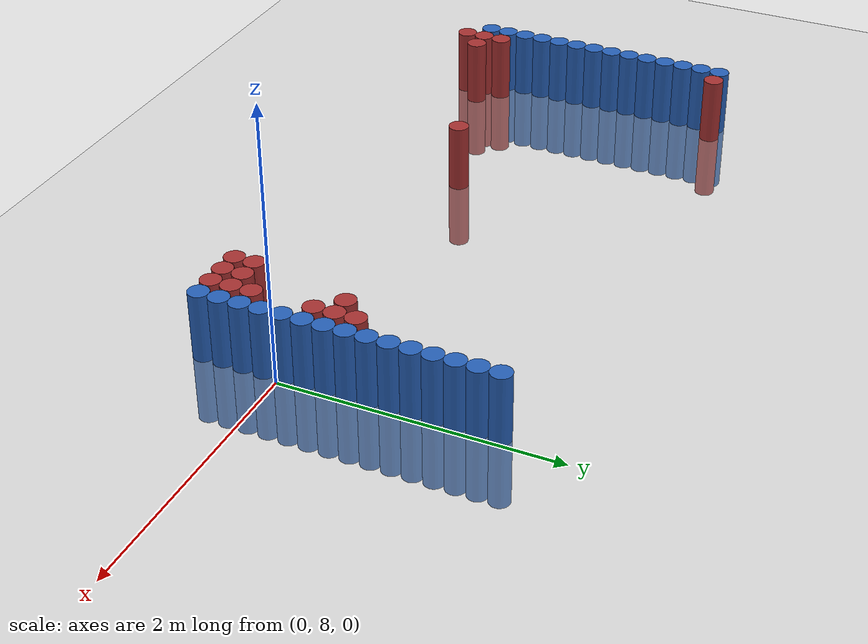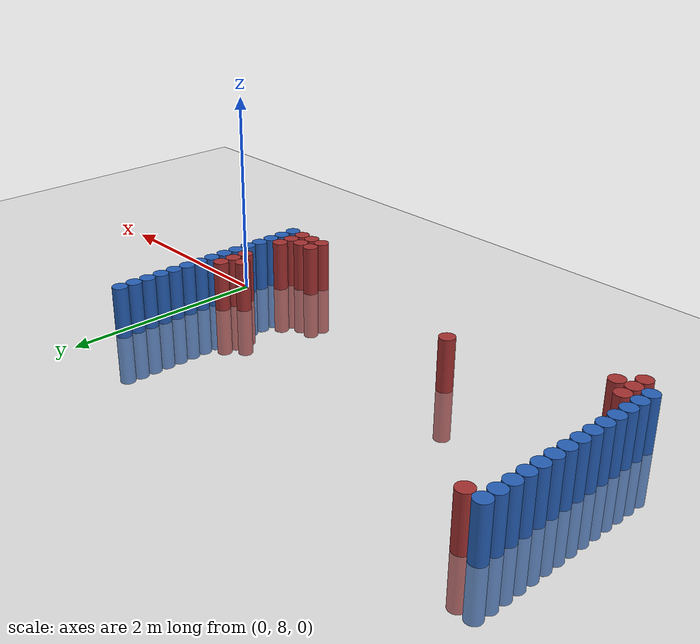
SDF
<sdf version="1.6">
 <world name="default">
  <model name="ground_plane">
   <static>1</static>
   <link name="link">
    <collision name="collision">
     <geometry><plane><normal>0 0 1</normal><size>100 100</size></plane></geometry>
     <surface><friction><ode><mu>100</mu><mu2>50</mu2></ode></friction></surface>
    </collision>
    <visual name="visual">
     <cast_shadows>0</cast_shadows>
     <geometry><plane><normal>0 0 1</normal><size>100 100</size></plane></geometry>
     <material>
      <script><uri>file://media/materials/scripts/gazebo.material</uri><name>Gazebo/Grey</name></script>
     </material>
    </visual>
   </link>
  </model>
  <model name="unit_cylinder_112">
   <static>1</static>
   <pose>-4.425000 7.575000 0.000000 0.000000 0.000000 0.000000</pose>
   <link name="link">
    <inertial>
     <mass>1</mass>
     <inertia><ixx>0.145833</ixx><ixy>0</ixy><ixz>0</ixz><iyy>0.145833</iyy><iyz>0</iyz><izz>0.125</izz></inertia>
    </inertial>
    <collision name="collision">
     <geometry><cylinder><radius>0.075000</radius><length>1</length></cylinder></geometry>
    </collision>
    <visual name="visual">
     <geometry><cylinder><radius>0.075000</radius><length>1</length></cylinder></geometry>
     <material>
      <ambient>0.152000 0.379000 0.720000 1</ambient>
      <diffuse>0.152000 0.379000 0.720000 1</diffuse>
     </material>
     <material>
      <script><name>Gazebo/Grey</name><uri>file://media/materials/scripts/gazebo.material</uri></script>
     </material>
    </visual>
   </link>
  </model>
  <model name="unit_cylinder_113">
   <static>1</static>
   <pose>-4.425000 7.725000 0.000000 0.000000 0.000000 0.000000</pose>
   <link name="link">
    <inertial>
     <mass>1</mass>
     <inertia><ixx>0.145833</ixx><ixy>0</ixy><ixz>0</ixz><iyy>0.145833</iyy><iyz>0</iyz><izz>0.125</izz></inertia>
    </inertial>
    <collision name="collision">
     <geometry><cylinder><radius>0.075000</radius><length>1</length></cylinder></geometry>
    </collision>
    <visual name="visual">
     <geometry><cylinder><radius>0.075000</radius><length>1</length></cylinder></geometry>
     <material>
      <ambient>0.152000 0.379000 0.720000 1</ambient>
      <diffuse>0.152000 0.379000 0.720000 1</diffuse>
     </material>
     <material>
      <script><name>Gazebo/Grey</name><uri>file://media/materials/scripts/gazebo.material</uri></script>
     </material>
    </visual>
   </link>
  </model>
  <model name="unit_cylinder_114">
   <static>1</static>
   <pose>-4.425000 7.875000 0.000000 0.000000 0.000000 0.000000</pose>
   <link name="link">
    <inertial>
     <mass>1</mass>
     <inertia><ixx>0.145833</ixx><ixy>0</ixy><ixz>0</ixz><iyy>0.145833</iyy><iyz>0</iyz><izz>0.125</izz></inertia>
    </inertial>
    <collision name="collision">
     <geometry><cylinder><radius>0.075000</radius><length>1</length></cylinder></geometry>
    </collision>
    <visual name="visual">
     <geometry><cylinder><radius>0.075000</radius><length>1</length></cylinder></geometry>
     <material>
      <ambient>0.152000 0.379000 0.720000 1</ambient>
      <diffuse>0.152000 0.379000 0.720000 1</diffuse>
     </material>
     <material>
      <script><name>Gazebo/Grey</name><uri>file://media/materials/scripts/gazebo.material</uri></script>
     </material>
    </visual>
   </link>
  </model>
  <model name="unit_cylinder_115">
   <static>1</static>
   <pose>-4.425000 8.025000 0.000000 0.000000 0.000000 0.000000</pose>
   <link name="link">
    <inertial>
     <mass>1</mass>
     <inertia><ixx>0.145833</ixx><ixy>0</ixy><ixz>0</ixz><iyy>0.145833</iyy><iyz>0</iyz><izz>0.125</izz></inertia>
    </inertial>
    <collision name="collision">
     <geometry><cylinder><radius>0.075000</radius><length>1</length></cylinder></geometry>
    </collision>
    <visual name="visual">
     <geometry><cylinder><radius>0.075000</radius><length>1</length></cylinder></geometry>
     <material>
      <ambient>0.152000 0.379000 0.720000 1</ambient>
      <diffuse>0.152000 0.379000 0.720000 1</diffuse>
     </material>
     <material>
      <script><name>Gazebo/Grey</name><uri>file://media/materials/scripts/gazebo.material</uri></script>
     </material>
    </visual>
   </link>
  </model>
  <model name="unit_cylinder_116">
   <static>1</static>
   <pose>-4.425000 8.175000 0.000000 0.000000 0.000000 0.000000</pose>
   <link name="link">
    <inertial>
     <mass>1</mass>
     <inertia><ixx>0.145833</ixx><ixy>0</ixy><ixz>0</ixz><iyy>0.145833</iyy><iyz>0</iyz><izz>0.125</izz></inertia>
    </inertial>
    <collision name="collision">
     <geometry><cylinder><radius>0.075000</radius><length>1</length></cylinder></geometry>
    </collision>
    <visual name="visual">
     <geometry><cylinder><radius>0.075000</radius><length>1</length></cylinder></geometry>
     <material>
      <ambient>0.152000 0.379000 0.720000 1</ambient>
      <diffuse>0.152000 0.379000 0.720000 1</diffuse>
     </material>
     <material>
      <script><name>Gazebo/Grey</name><uri>file://media/materials/scripts/gazebo.material</uri></script>
     </material>
    </visual>
   </link>
  </model>
  <model name="unit_cylinder_117">
   <static>1</static>
   <pose>-4.425000 8.325000 0.000000 0.000000 0.000000 0.000000</pose>
   <link name="link">
    <inertial>
     <mass>1</mass>
     <inertia><ixx>0.145833</ixx><ixy>0</ixy><ixz>0</ixz><iyy>0.145833</iyy><iyz>0</iyz><izz>0.125</izz></inertia>
    </inertial>
    <collision name="collision">
     <geometry><cylinder><radius>0.075000</radius><length>1</length></cylinder></geometry>
    </collision>
    <visual name="visual">
     <geometry><cylinder><radius>0.075000</radius><length>1</length></cylinder></geometry>
     <material>
      <ambient>0.152000 0.379000 0.720000 1</ambient>
      <diffuse>0.152000 0.379000 0.720000 1</diffuse>
     </material>
     <material>
      <script><name>Gazebo/Grey</name><uri>file://media/materials/scripts/gazebo.material</uri></script>
     </material>
    </visual>
   </link>
  </model>
  <model name="unit_cylinder_118">
   <static>1</static>
   <pose>-4.425000 8.475000 0.000000 0.000000 0.000000 0.000000</pose>
   <link name="link">
    <inertial>
     <mass>1</mass>
     <inertia><ixx>0.145833</ixx><ixy>0</ixy><ixz>0</ixz><iyy>0.145833</iyy><iyz>0</iyz><izz>0.125</izz></inertia>
    </inertial>
    <collision name="collision">
     <geometry><cylinder><radius>0.075000</radius><length>1</length></cylinder></geometry>
    </collision>
    <visual name="visual">
     <geometry><cylinder><radius>0.075000</radius><length>1</length></cylinder></geometry>
     <material>
      <ambient>0.152000 0.379000 0.720000 1</ambient>
      <diffuse>0.152000 0.379000 0.720000 1</diffuse>
     </material>
     <material>
      <script><name>Gazebo/Grey</name><uri>file://media/materials/scripts/gazebo.material</uri></script>
     </material>
    </visual>
   </link>
  </model>
  <model name="unit_cylinder_119">
   <static>1</static>
   <pose>-4.425000 8.625000 0.000000 0.000000 0.000000 0.000000</pose>
   <link name="link">
    <inertial>
     <mass>1</mass>
     <inertia><ixx>0.145833</ixx><ixy>0</ixy><ixz>0</ixz><iyy>0.145833</iyy><iyz>0</iyz><izz>0.125</izz></inertia>
    </inertial>
    <collision name="collision">
     <geometry><cylinder><radius>0.075000</radius><length>1</length></cylinder></geometry>
    </collision>
    <visual name="visual">
     <geometry><cylinder><radius>0.075000</radius><length>1</length></cylinder></geometry>
     <material>
      <ambient>0.152000 0.379000 0.720000 1</ambient>
      <diffuse>0.152000 0.379000 0.720000 1</diffuse>
     </material>
     <material>
      <script><name>Gazebo/Grey</name><uri>file://media/materials/scripts/gazebo.material</uri></script>
     </material>
    </visual>
   </link>
  </model>
  <model name="unit_cylinder_120">
   <static>1</static>
   <pose>-4.425000 8.775000 0.000000 0.000000 0.000000 0.000000</pose>
   <link name="link">
    <inertial>
     <mass>1</mass>
     <inertia><ixx>0.145833</ixx><ixy>0</ixy><ixz>0</ixz><iyy>0.145833</iyy><iyz>0</iyz><izz>0.125</izz></inertia>
    </inertial>
    <collision name="collision">
     <geometry><cylinder><radius>0.075000</radius><length>1</length></cylinder></geometry>
    </collision>
    <visual name="visual">
     <geometry><cylinder><radius>0.075000</radius><length>1</length></cylinder></geometry>
     <material>
      <ambient>0.152000 0.379000 0.720000 1</ambient>
      <diffuse>0.152000 0.379000 0.720000 1</diffuse>
     </material>
     <material>
      <script><name>Gazebo/Grey</name><uri>file://media/materials/scripts/gazebo.material</uri></script>
     </material>
    </visual>
   </link>
  </model>
  <model name="unit_cylinder_121">
   <static>1</static>
   <pose>-4.425000 8.925000 0.000000 0.000000 0.000000 0.000000</pose>
   <link name="link">
    <inertial>
     <mass>1</mass>
     <inertia><ixx>0.145833</ixx><ixy>0</ixy><ixz>0</ixz><iyy>0.145833</iyy><iyz>0</iyz><izz>0.125</izz></inertia>
    </inertial>
    <collision name="collision">
     <geometry><cylinder><radius>0.075000</radius><length>1</length></cylinder></geometry>
    </collision>
    <visual name="visual">
     <geometry><cylinder><radius>0.075000</radius><length>1</length></cylinder></geometry>
     <material>
      <ambient>0.152000 0.379000 0.720000 1</ambient>
      <diffuse>0.152000 0.379000 0.720000 1</diffuse>
     </material>
     <material>
      <script><name>Gazebo/Grey</name><uri>file://media/materials/scripts/gazebo.material</uri></script>
     </material>
    </visual>
   </link>
  </model>
  <model name="unit_cylinder_122">
   <static>1</static>
   <pose>-4.425000 9.075000 0.000000 0.000000 0.000000 0.000000</pose>
   <link name="link">
    <inertial>
     <mass>1</mass>
     <inertia><ixx>0.145833</ixx><ixy>0</ixy><ixz>0</ixz><iyy>0.145833</iyy><iyz>0</iyz><izz>0.125</izz></inertia>
    </inertial>
    <collision name="collision">
     <geometry><cylinder><radius>0.075000</radius><length>1</length></cylinder></geometry>
    </collision>
    <visual name="visual">
     <geometry><cylinder><radius>0.075000</radius><length>1</length></cylinder></geometry>
     <material>
      <ambient>0.152000 0.379000 0.720000 1</ambient>
      <diffuse>0.152000 0.379000 0.720000 1</diffuse>
     </material>
     <material>
      <script><name>Gazebo/Grey</name><uri>file://media/materials/scripts/gazebo.material</uri></script>
     </material>
    </visual>
   </link>
  </model>
  <model name="unit_cylinder_123">
   <static>1</static>
   <pose>-4.425000 9.225000 0.000000 0.000000 0.000000 0.000000</pose>
   <link name="link">
    <inertial>
     <mass>1</mass>
     <inertia><ixx>0.145833</ixx><ixy>0</ixy><ixz>0</ixz><iyy>0.145833</iyy><iyz>0</iyz><izz>0.125</izz></inertia>
    </inertial>
    <collision name="collision">
     <geometry><cylinder><radius>0.075000</radius><length>1</length></cylinder></geometry>
    </collision>
    <visual name="visual">
     <geometry><cylinder><radius>0.075000</radius><length>1</length></cylinder></geometry>
     <material>
      <ambient>0.152000 0.379000 0.720000 1</ambient>
      <diffuse>0.152000 0.379000 0.720000 1</diffuse>
     </material>
     <material>
      <script><name>Gazebo/Grey</name><uri>file://media/materials/scripts/gazebo.material</uri></script>
     </material>
    </visual>
   </link>
  </model>
  <model name="unit_cylinder_124">
   <static>1</static>
   <pose>-4.425000 9.375000 0.000000 0.000000 0.000000 0.000000</pose>
   <link name="link">
    <inertial>
     <mass>1</mass>
     <inertia><ixx>0.145833</ixx><ixy>0</ixy><ixz>0</ixz><iyy>0.145833</iyy><iyz>0</iyz><izz>0.125</izz></inertia>
    </inertial>
    <collision name="collision">
     <geometry><cylinder><radius>0.075000</radius><length>1</length></cylinder></geometry>
    </collision>
    <visual name="visual">
     <geometry><cylinder><radius>0.075000</radius><length>1</length></cylinder></geometry>
     <material>
      <ambient>0.152000 0.379000 0.720000 1</ambient>
      <diffuse>0.152000 0.379000 0.720000 1</diffuse>
     </material>
     <material>
      <script><name>Gazebo/Grey</name><uri>file://media/materials/scripts/gazebo.material</uri></script>
     </material>
    </visual>
   </link>
  </model>
  <model name="unit_cylinder_125">
   <static>1</static>
   <pose>-4.425000 9.525000 0.000000 0.000000 0.000000 0.000000</pose>
   <link name="link">
    <inertial>
     <mass>1</mass>
     <inertia><ixx>0.145833</ixx><ixy>0</ixy><ixz>0</ixz><iyy>0.145833</iyy><iyz>0</iyz><izz>0.125</izz></inertia>
    </inertial>
    <collision name="collision">
     <geometry><cylinder><radius>0.075000</radius><length>1</length></cylinder></geometry>
    </collision>
    <visual name="visual">
     <geometry><cylinder><radius>0.075000</radius><length>1</length></cylinder></geometry>
     <material>
      <ambient>0.152000 0.379000 0.720000 1</ambient>
      <diffuse>0.152000 0.379000 0.720000 1</diffuse>
     </material>
     <material>
      <script><name>Gazebo/Grey</name><uri>file://media/materials/scripts/gazebo.material</uri></script>
     </material>
    </visual>
   </link>
  </model>
  <model name="unit_cylinder_129">
   <static>1</static>
   <pose>-4.275000 7.425000 0.000000 0.000000 0.000000 0.000000</pose>
   <link name="link">
    <inertial>
     <mass>1</mass>
     <inertia><ixx>0.145833</ixx><ixy>0</ixy><ixz>0</ixz><iyy>0.145833</iyy><iyz>0</iyz><izz>0.125</izz></inertia>
    </inertial>
    <collision name="collision">
     <geometry><cylinder><radius>0.075000</radius><length>1</length></cylinder></geometry>
    </collision>
    <visual name="visual">
     <geometry><cylinder><radius>0.075000</radius><length>1</length></cylinder></geometry>
     <material>
      <ambient>0.648000 0.192000 0.192000 1</ambient>
      <diffuse>0.648000 0.192000 0.192000 1</diffuse>
     </material>
     <material>
      <script><name>Gazebo/Grey</name><uri>file://media/materials/scripts/gazebo.material</uri></script>
     </material>
    </visual>
   </link>
  </model>
  <model name="unit_cylinder_130">
   <static>1</static>
   <pose>-4.275000 7.575000 0.000000 0.000000 0.000000 0.000000</pose>
   <link name="link">
    <inertial>
     <mass>1</mass>
     <inertia><ixx>0.145833</ixx><ixy>0</ixy><ixz>0</ixz><iyy>0.145833</iyy><iyz>0</iyz><izz>0.125</izz></inertia>
    </inertial>
    <collision name="collision">
     <geometry><cylinder><radius>0.075000</radius><length>1</length></cylinder></geometry>
    </collision>
    <visual name="visual">
     <geometry><cylinder><radius>0.075000</radius><length>1</length></cylinder></geometry>
     <material>
      <ambient>0.648000 0.192000 0.192000 1</ambient>
      <diffuse>0.648000 0.192000 0.192000 1</diffuse>
     </material>
     <material>
      <script><name>Gazebo/Grey</name><uri>file://media/materials/scripts/gazebo.material</uri></script>
     </material>
    </visual>
   </link>
  </model>
  <model name="unit_cylinder_131">
   <static>1</static>
   <pose>-4.275000 7.725000 0.000000 0.000000 0.000000 0.000000</pose>
   <link name="link">
    <inertial>
     <mass>1</mass>
     <inertia><ixx>0.145833</ixx><ixy>0</ixy><ixz>0</ixz><iyy>0.145833</iyy><iyz>0</iyz><izz>0.125</izz></inertia>
    </inertial>
    <collision name="collision">
     <geometry><cylinder><radius>0.075000</radius><length>1</length></cylinder></geometry>
    </collision>
    <visual name="visual">
     <geometry><cylinder><radius>0.075000</radius><length>1</length></cylinder></geometry>
     <material>
      <ambient>0.648000 0.192000 0.192000 1</ambient>
      <diffuse>0.648000 0.192000 0.192000 1</diffuse>
     </material>
     <material>
      <script><name>Gazebo/Grey</name><uri>file://media/materials/scripts/gazebo.material</uri></script>
     </material>
    </visual>
   </link>
  </model>
  <model name="unit_cylinder_132">
   <static>1</static>
   <pose>-4.275000 9.525000 0.000000 0.000000 0.000000 0.000000</pose>
   <link name="link">
    <inertial>
     <mass>1</mass>
     <inertia><ixx>0.145833</ixx><ixy>0</ixy><ixz>0</ixz><iyy>0.145833</iyy><iyz>0</iyz><izz>0.125</izz></inertia>
    </inertial>
    <collision name="collision">
     <geometry><cylinder><radius>0.075000</radius><length>1</length></cylinder></geometry>
    </collision>
    <visual name="visual">
     <geometry><cylinder><radius>0.075000</radius><length>1</length></cylinder></geometry>
     <material>
      <ambient>0.648000 0.192000 0.192000 1</ambient>
      <diffuse>0.648000 0.192000 0.192000 1</diffuse>
     </material>
     <material>
      <script><name>Gazebo/Grey</name><uri>file://media/materials/scripts/gazebo.material</uri></script>
     </material>
    </visual>
   </link>
  </model>
  <model name="unit_cylinder_133">
   <static>1</static>
   <pose>-4.125000 7.575000 0.000000 0.000000 0.000000 0.000000</pose>
   <link name="link">
    <inertial>
     <mass>1</mass>
     <inertia><ixx>0.145833</ixx><ixy>0</ixy><ixz>0</ixz><iyy>0.145833</iyy><iyz>0</iyz><izz>0.125</izz></inertia>
    </inertial>
    <collision name="collision">
     <geometry><cylinder><radius>0.075000</radius><length>1</length></cylinder></geometry>
    </collision>
    <visual name="visual">
     <geometry><cylinder><radius>0.075000</radius><length>1</length></cylinder></geometry>
     <material>
      <ambient>0.648000 0.192000 0.192000 1</ambient>
      <diffuse>0.648000 0.192000 0.192000 1</diffuse>
     </material>
     <material>
      <script><name>Gazebo/Grey</name><uri>file://media/materials/scripts/gazebo.material</uri></script>
     </material>
    </visual>
   </link>
  </model>
  <model name="unit_cylinder_138">
   <static>1</static>
   <pose>-2.775000 8.025000 0.000000 0.000000 0.000000 0.000000</pose>
   <link name="link">
    <inertial>
     <mass>1</mass>
     <inertia><ixx>0.145833</ixx><ixy>0</ixy><ixz>0</ixz><iyy>0.145833</iyy><iyz>0</iyz><izz>0.125</izz></inertia>
    </inertial>
    <collision name="collision">
     <geometry><cylinder><radius>0.075000</radius><length>1</length></cylinder></geometry>
    </collision>
    <visual name="visual">
     <geometry><cylinder><radius>0.075000</radius><length>1</length></cylinder></geometry>
     <material>
      <ambient>0.648000 0.192000 0.192000 1</ambient>
      <diffuse>0.648000 0.192000 0.192000 1</diffuse>
     </material>
     <material>
      <script><name>Gazebo/Grey</name><uri>file://media/materials/scripts/gazebo.material</uri></script>
     </material>
    </visual>
   </link>
  </model>
  <model name="unit_cylinder_144">
   <static>1</static>
   <pose>-0.525000 7.425000 0.000000 0.000000 0.000000 0.000000</pose>
   <link name="link">
    <inertial>
     <mass>1</mass>
     <inertia><ixx>0.145833</ixx><ixy>0</ixy><ixz>0</ixz><iyy>0.145833</iyy><iyz>0</iyz><izz>0.125</izz></inertia>
    </inertial>
    <collision name="collision">
     <geometry><cylinder><radius>0.075000</radius><length>1</length></cylinder></geometry>
    </collision>
    <visual name="visual">
     <geometry><cylinder><radius>0.075000</radius><length>1</length></cylinder></geometry>
     <material>
      <ambient>0.648000 0.192000 0.192000 1</ambient>
      <diffuse>0.648000 0.192000 0.192000 1</diffuse>
     </material>
     <material>
      <script><name>Gazebo/Grey</name><uri>file://media/materials/scripts/gazebo.material</uri></script>
     </material>
    </visual>
   </link>
  </model>
  <model name="unit_cylinder_145">
   <static>1</static>
   <pose>-0.525000 7.575000 0.000000 0.000000 0.000000 0.000000</pose>
   <link name="link">
    <inertial>
     <mass>1</mass>
     <inertia><ixx>0.145833</ixx><ixy>0</ixy><ixz>0</ixz><iyy>0.145833</iyy><iyz>0</iyz><izz>0.125</izz></inertia>
    </inertial>
    <collision name="collision">
     <geometry><cylinder><radius>0.075000</radius><length>1</length></cylinder></geometry>
    </collision>
    <visual name="visual">
     <geometry><cylinder><radius>0.075000</radius><length>1</length></cylinder></geometry>
     <material>
      <ambient>0.648000 0.192000 0.192000 1</ambient>
      <diffuse>0.648000 0.192000 0.192000 1</diffuse>
     </material>
     <material>
      <script><name>Gazebo/Grey</name><uri>file://media/materials/scripts/gazebo.material</uri></script>
     </material>
    </visual>
   </link>
  </model>
  <model name="unit_cylinder_146">
   <static>1</static>
   <pose>-0.375000 7.425000 0.000000 0.000000 0.000000 0.000000</pose>
   <link name="link">
    <inertial>
     <mass>1</mass>
     <inertia><ixx>0.145833</ixx><ixy>0</ixy><ixz>0</ixz><iyy>0.145833</iyy><iyz>0</iyz><izz>0.125</izz></inertia>
    </inertial>
    <collision name="collision">
     <geometry><cylinder><radius>0.075000</radius><length>1</length></cylinder></geometry>
    </collision>
    <visual name="visual">
     <geometry><cylinder><radius>0.075000</radius><length>1</length></cylinder></geometry>
     <material>
      <ambient>0.648000 0.192000 0.192000 1</ambient>
      <diffuse>0.648000 0.192000 0.192000 1</diffuse>
     </material>
     <material>
      <script><name>Gazebo/Grey</name><uri>file://media/materials/scripts/gazebo.material</uri></script>
     </material>
    </visual>
   </link>
  </model>
  <model name="unit_cylinder_147">
   <static>1</static>
   <pose>-0.375000 7.575000 0.000000 0.000000 0.000000 0.000000</pose>
   <link name="link">
    <inertial>
     <mass>1</mass>
     <inertia><ixx>0.145833</ixx><ixy>0</ixy><ixz>0</ixz><iyy>0.145833</iyy><iyz>0</iyz><izz>0.125</izz></inertia>
    </inertial>
    <collision name="collision">
     <geometry><cylinder><radius>0.075000</radius><length>1</length></cylinder></geometry>
    </collision>
    <visual name="visual">
     <geometry><cylinder><radius>0.075000</radius><length>1</length></cylinder></geometry>
     <material>
      <ambient>0.648000 0.192000 0.192000 1</ambient>
      <diffuse>0.648000 0.192000 0.192000 1</diffuse>
     </material>
     <material>
      <script><name>Gazebo/Grey</name><uri>file://media/materials/scripts/gazebo.material</uri></script>
     </material>
    </visual>
   </link>
  </model>
  <model name="unit_cylinder_148">
   <static>1</static>
   <pose>-0.375000 8.325000 0.000000 0.000000 0.000000 0.000000</pose>
   <link name="link">
    <inertial>
     <mass>1</mass>
     <inertia><ixx>0.145833</ixx><ixy>0</ixy><ixz>0</ixz><iyy>0.145833</iyy><iyz>0</iyz><izz>0.125</izz></inertia>
    </inertial>
    <collision name="collision">
     <geometry><cylinder><radius>0.075000</radius><length>1</length></cylinder></geometry>
    </collision>
    <visual name="visual">
     <geometry><cylinder><radius>0.075000</radius><length>1</length></cylinder></geometry>
     <material>
      <ambient>0.648000 0.192000 0.192000 1</ambient>
      <diffuse>0.648000 0.192000 0.192000 1</diffuse>
     </material>
     <material>
      <script><name>Gazebo/Grey</name><uri>file://media/materials/scripts/gazebo.material</uri></script>
     </material>
    </visual>
   </link>
  </model>
  <model name="unit_cylinder_150">
   <static>1</static>
   <pose>-0.225000 7.425000 0.000000 0.000000 0.000000 0.000000</pose>
   <link name="link">
    <inertial>
     <mass>1</mass>
     <inertia><ixx>0.145833</ixx><ixy>0</ixy><ixz>0</ixz><iyy>0.145833</iyy><iyz>0</iyz><izz>0.125</izz></inertia>
    </inertial>
    <collision name="collision">
     <geometry><cylinder><radius>0.075000</radius><length>1</length></cylinder></geometry>
    </collision>
    <visual name="visual">
     <geometry><cylinder><radius>0.075000</radius><length>1</length></cylinder></geometry>
     <material>
      <ambient>0.648000 0.192000 0.192000 1</ambient>
      <diffuse>0.648000 0.192000 0.192000 1</diffuse>
     </material>
     <material>
      <script><name>Gazebo/Grey</name><uri>file://media/materials/scripts/gazebo.material</uri></script>
     </material>
    </visual>
   </link>
  </model>
  <model name="unit_cylinder_151">
   <static>1</static>
   <pose>-0.225000 7.575000 0.000000 0.000000 0.000000 0.000000</pose>
   <link name="link">
    <inertial>
     <mass>1</mass>
     <inertia><ixx>0.145833</ixx><ixy>0</ixy><ixz>0</ixz><iyy>0.145833</iyy><iyz>0</iyz><izz>0.125</izz></inertia>
    </inertial>
    <collision name="collision">
     <geometry><cylinder><radius>0.075000</radius><length>1</length></cylinder></geometry>
    </collision>
    <visual name="visual">
     <geometry><cylinder><radius>0.075000</radius><length>1</length></cylinder></geometry>
     <material>
      <ambient>0.648000 0.192000 0.192000 1</ambient>
      <diffuse>0.648000 0.192000 0.192000 1</diffuse>
     </material>
     <material>
      <script><name>Gazebo/Grey</name><uri>file://media/materials/scripts/gazebo.material</uri></script>
     </material>
    </visual>
   </link>
  </model>
  <model name="unit_cylinder_152">
   <static>1</static>
   <pose>-0.225000 7.725000 0.000000 0.000000 0.000000 0.000000</pose>
   <link name="link">
    <inertial>
     <mass>1</mass>
     <inertia><ixx>0.145833</ixx><ixy>0</ixy><ixz>0</ixz><iyy>0.145833</iyy><iyz>0</iyz><izz>0.125</izz></inertia>
    </inertial>
    <collision name="collision">
     <geometry><cylinder><radius>0.075000</radius><length>1</length></cylinder></geometry>
    </collision>
    <visual name="visual">
     <geometry><cylinder><radius>0.075000</radius><length>1</length></cylinder></geometry>
     <material>
      <ambient>0.648000 0.192000 0.192000 1</ambient>
      <diffuse>0.648000 0.192000 0.192000 1</diffuse>
     </material>
     <material>
      <script><name>Gazebo/Grey</name><uri>file://media/materials/scripts/gazebo.material</uri></script>
     </material>
    </visual>
   </link>
  </model>
  <model name="unit_cylinder_153">
   <static>1</static>
   <pose>-0.225000 8.175000 0.000000 0.000000 0.000000 0.000000</pose>
   <link name="link">
    <inertial>
     <mass>1</mass>
     <inertia><ixx>0.145833</ixx><ixy>0</ixy><ixz>0</ixz><iyy>0.145833</iyy><iyz>0</iyz><izz>0.125</izz></inertia>
    </inertial>
    <collision name="collision">
     <geometry><cylinder><radius>0.075000</radius><length>1</length></cylinder></geometry>
    </collision>
    <visual name="visual">
     <geometry><cylinder><radius>0.075000</radius><length>1</length></cylinder></geometry>
     <material>
      <ambient>0.648000 0.192000 0.192000 1</ambient>
      <diffuse>0.648000 0.192000 0.192000 1</diffuse>
     </material>
     <material>
      <script><name>Gazebo/Grey</name><uri>file://media/materials/scripts/gazebo.material</uri></script>
     </material>
    </visual>
   </link>
  </model>
  <model name="unit_cylinder_154">
   <static>1</static>
   <pose>-0.225000 8.325000 0.000000 0.000000 0.000000 0.000000</pose>
   <link name="link">
    <inertial>
     <mass>1</mass>
     <inertia><ixx>0.145833</ixx><ixy>0</ixy><ixz>0</ixz><iyy>0.145833</iyy><iyz>0</iyz><izz>0.125</izz></inertia>
    </inertial>
    <collision name="collision">
     <geometry><cylinder><radius>0.075000</radius><length>1</length></cylinder></geometry>
    </collision>
    <visual name="visual">
     <geometry><cylinder><radius>0.075000</radius><length>1</length></cylinder></geometry>
     <material>
      <ambient>0.648000 0.192000 0.192000 1</ambient>
      <diffuse>0.648000 0.192000 0.192000 1</diffuse>
     </material>
     <material>
      <script><name>Gazebo/Grey</name><uri>file://media/materials/scripts/gazebo.material</uri></script>
     </material>
    </visual>
   </link>
  </model>
  <model name="unit_cylinder_155">
   <static>1</static>
   <pose>-0.225000 8.475000 0.000000 0.000000 0.000000 0.000000</pose>
   <link name="link">
    <inertial>
     <mass>1</mass>
     <inertia><ixx>0.145833</ixx><ixy>0</ixy><ixz>0</ixz><iyy>0.145833</iyy><iyz>0</iyz><izz>0.125</izz></inertia>
    </inertial>
    <collision name="collision">
     <geometry><cylinder><radius>0.075000</radius><length>1</length></cylinder></geometry>
    </collision>
    <visual name="visual">
     <geometry><cylinder><radius>0.075000</radius><length>1</length></cylinder></geometry>
     <material>
      <ambient>0.648000 0.192000 0.192000 1</ambient>
      <diffuse>0.648000 0.192000 0.192000 1</diffuse>
     </material>
     <material>
      <script><name>Gazebo/Grey</name><uri>file://media/materials/scripts/gazebo.material</uri></script>
     </material>
    </visual>
   </link>
  </model>
  <model name="unit_cylinder_171">
   <static>1</static>
   <pose>-0.075000 7.425000 0.000000 0.000000 0.000000 0.000000</pose>
   <link name="link">
    <inertial>
     <mass>1</mass>
     <inertia><ixx>0.145833</ixx><ixy>0</ixy><ixz>0</ixz><iyy>0.145833</iyy><iyz>0</iyz><izz>0.125</izz></inertia>
    </inertial>
    <collision name="collision">
     <geometry><cylinder><radius>0.075000</radius><length>1</length></cylinder></geometry>
    </collision>
    <visual name="visual">
     <geometry><cylinder><radius>0.075000</radius><length>1</length></cylinder></geometry>
     <material>
      <ambient>0.152000 0.379000 0.720000 1</ambient>
      <diffuse>0.152000 0.379000 0.720000 1</diffuse>
     </material>
     <material>
      <script><name>Gazebo/Grey</name><uri>file://media/materials/scripts/gazebo.material</uri></script>
     </material>
    </visual>
   </link>
  </model>
  <model name="unit_cylinder_172">
   <static>1</static>
   <pose>-0.075000 7.575000 0.000000 0.000000 0.000000 0.000000</pose>
   <link name="link">
    <inertial>
     <mass>1</mass>
     <inertia><ixx>0.145833</ixx><ixy>0</ixy><ixz>0</ixz><iyy>0.145833</iyy><iyz>0</iyz><izz>0.125</izz></inertia>
    </inertial>
    <collision name="collision">
     <geometry><cylinder><radius>0.075000</radius><length>1</length></cylinder></geometry>
    </collision>
    <visual name="visual">
     <geometry><cylinder><radius>0.075000</radius><length>1</length></cylinder></geometry>
     <material>
      <ambient>0.152000 0.379000 0.720000 1</ambient>
      <diffuse>0.152000 0.379000 0.720000 1</diffuse>
     </material>
     <material>
      <script><name>Gazebo/Grey</name><uri>file://media/materials/scripts/gazebo.material</uri></script>
     </material>
    </visual>
   </link>
  </model>
  <model name="unit_cylinder_173">
   <static>1</static>
   <pose>-0.075000 7.725000 0.000000 0.000000 0.000000 0.000000</pose>
   <link name="link">
    <inertial>
     <mass>1</mass>
     <inertia><ixx>0.145833</ixx><ixy>0</ixy><ixz>0</ixz><iyy>0.145833</iyy><iyz>0</iyz><izz>0.125</izz></inertia>
    </inertial>
    <collision name="collision">
     <geometry><cylinder><radius>0.075000</radius><length>1</length></cylinder></geometry>
    </collision>
    <visual name="visual">
     <geometry><cylinder><radius>0.075000</radius><length>1</length></cylinder></geometry>
     <material>
      <ambient>0.152000 0.379000 0.720000 1</ambient>
      <diffuse>0.152000 0.379000 0.720000 1</diffuse>
     </material>
     <material>
      <script><name>Gazebo/Grey</name><uri>file://media/materials/scripts/gazebo.material</uri></script>
     </material>
    </visual>
   </link>
  </model>
  <model name="unit_cylinder_174">
   <static>1</static>
   <pose>-0.075000 7.875000 0.000000 0.000000 0.000000 0.000000</pose>
   <link name="link">
    <inertial>
     <mass>1</mass>
     <inertia><ixx>0.145833</ixx><ixy>0</ixy><ixz>0</ixz><iyy>0.145833</iyy><iyz>0</iyz><izz>0.125</izz></inertia>
    </inertial>
    <collision name="collision">
     <geometry><cylinder><radius>0.075000</radius><length>1</length></cylinder></geometry>
    </collision>
    <visual name="visual">
     <geometry><cylinder><radius>0.075000</radius><length>1</length></cylinder></geometry>
     <material>
      <ambient>0.152000 0.379000 0.720000 1</ambient>
      <diffuse>0.152000 0.379000 0.720000 1</diffuse>
     </material>
     <material>
      <script><name>Gazebo/Grey</name><uri>file://media/materials/scripts/gazebo.material</uri></script>
     </material>
    </visual>
   </link>
  </model>
  <model name="unit_cylinder_175">
   <static>1</static>
   <pose>-0.075000 8.025000 0.000000 0.000000 0.000000 0.000000</pose>
   <link name="link">
    <inertial>
     <mass>1</mass>
     <inertia><ixx>0.145833</ixx><ixy>0</ixy><ixz>0</ixz><iyy>0.145833</iyy><iyz>0</iyz><izz>0.125</izz></inertia>
    </inertial>
    <collision name="collision">
     <geometry><cylinder><radius>0.075000</radius><length>1</length></cylinder></geometry>
    </collision>
    <visual name="visual">
     <geometry><cylinder><radius>0.075000</radius><length>1</length></cylinder></geometry>
     <material>
      <ambient>0.152000 0.379000 0.720000 1</ambient>
      <diffuse>0.152000 0.379000 0.720000 1</diffuse>
     </material>
     <material>
      <script><name>Gazebo/Grey</name><uri>file://media/materials/scripts/gazebo.material</uri></script>
     </material>
    </visual>
   </link>
  </model>
  <model name="unit_cylinder_176">
   <static>1</static>
   <pose>-0.075000 8.175000 0.000000 0.000000 0.000000 0.000000</pose>
   <link name="link">
    <inertial>
     <mass>1</mass>
     <inertia><ixx>0.145833</ixx><ixy>0</ixy><ixz>0</ixz><iyy>0.145833</iyy><iyz>0</iyz><izz>0.125</izz></inertia>
    </inertial>
    <collision name="collision">
     <geometry><cylinder><radius>0.075000</radius><length>1</length></cylinder></geometry>
    </collision>
    <visual name="visual">
     <geometry><cylinder><radius>0.075000</radius><length>1</length></cylinder></geometry>
     <material>
      <ambient>0.152000 0.379000 0.720000 1</ambient>
      <diffuse>0.152000 0.379000 0.720000 1</diffuse>
     </material>
     <material>
      <script><name>Gazebo/Grey</name><uri>file://media/materials/scripts/gazebo.material</uri></script>
     </material>
    </visual>
   </link>
  </model>
  <model name="unit_cylinder_177">
   <static>1</static>
   <pose>-0.075000 8.325000 0.000000 0.000000 0.000000 0.000000</pose>
   <link name="link">
    <inertial>
     <mass>1</mass>
     <inertia><ixx>0.145833</ixx><ixy>0</ixy><ixz>0</ixz><iyy>0.145833</iyy><iyz>0</iyz><izz>0.125</izz></inertia>
    </inertial>
    <collision name="collision">
     <geometry><cylinder><radius>0.075000</radius><length>1</length></cylinder></geometry>
    </collision>
    <visual name="visual">
     <geometry><cylinder><radius>0.075000</radius><length>1</length></cylinder></geometry>
     <material>
      <ambient>0.152000 0.379000 0.720000 1</ambient>
      <diffuse>0.152000 0.379000 0.720000 1</diffuse>
     </material>
     <material>
      <script><name>Gazebo/Grey</name><uri>file://media/materials/scripts/gazebo.material</uri></script>
     </material>
    </visual>
   </link>
  </model>
  <model name="unit_cylinder_178">
   <static>1</static>
   <pose>-0.075000 8.475000 0.000000 0.000000 0.000000 0.000000</pose>
   <link name="link">
    <inertial>
     <mass>1</mass>
     <inertia><ixx>0.145833</ixx><ixy>0</ixy><ixz>0</ixz><iyy>0.145833</iyy><iyz>0</iyz><izz>0.125</izz></inertia>
    </inertial>
    <collision name="collision">
     <geometry><cylinder><radius>0.075000</radius><length>1</length></cylinder></geometry>
    </collision>
    <visual name="visual">
     <geometry><cylinder><radius>0.075000</radius><length>1</length></cylinder></geometry>
     <material>
      <ambient>0.152000 0.379000 0.720000 1</ambient>
      <diffuse>0.152000 0.379000 0.720000 1</diffuse>
     </material>
     <material>
      <script><name>Gazebo/Grey</name><uri>file://media/materials/scripts/gazebo.material</uri></script>
     </material>
    </visual>
   </link>
  </model>
  <model name="unit_cylinder_179">
   <static>1</static>
   <pose>-0.075000 8.625000 0.000000 0.000000 0.000000 0.000000</pose>
   <link name="link">
    <inertial>
     <mass>1</mass>
     <inertia><ixx>0.145833</ixx><ixy>0</ixy><ixz>0</ixz><iyy>0.145833</iyy><iyz>0</iyz><izz>0.125</izz></inertia>
    </inertial>
    <collision name="collision">
     <geometry><cylinder><radius>0.075000</radius><length>1</length></cylinder></geometry>
    </collision>
    <visual name="visual">
     <geometry><cylinder><radius>0.075000</radius><length>1</length></cylinder></geometry>
     <material>
      <ambient>0.152000 0.379000 0.720000 1</ambient>
      <diffuse>0.152000 0.379000 0.720000 1</diffuse>
     </material>
     <material>
      <script><name>Gazebo/Grey</name><uri>file://media/materials/scripts/gazebo.material</uri></script>
     </material>
    </visual>
   </link>
  </model>
  <model name="unit_cylinder_180">
   <static>1</static>
   <pose>-0.075000 8.775000 0.000000 0.000000 0.000000 0.000000</pose>
   <link name="link">
    <inertial>
     <mass>1</mass>
     <inertia><ixx>0.145833</ixx><ixy>0</ixy><ixz>0</ixz><iyy>0.145833</iyy><iyz>0</iyz><izz>0.125</izz></inertia>
    </inertial>
    <collision name="collision">
     <geometry><cylinder><radius>0.075000</radius><length>1</length></cylinder></geometry>
    </collision>
    <visual name="visual">
     <geometry><cylinder><radius>0.075000</radius><length>1</length></cylinder></geometry>
     <material>
      <ambient>0.152000 0.379000 0.720000 1</ambient>
      <diffuse>0.152000 0.379000 0.720000 1</diffuse>
     </material>
     <material>
      <script><name>Gazebo/Grey</name><uri>file://media/materials/scripts/gazebo.material</uri></script>
     </material>
    </visual>
   </link>
  </model>
  <model name="unit_cylinder_181">
   <static>1</static>
   <pose>-0.075000 8.925000 0.000000 0.000000 0.000000 0.000000</pose>
   <link name="link">
    <inertial>
     <mass>1</mass>
     <inertia><ixx>0.145833</ixx><ixy>0</ixy><ixz>0</ixz><iyy>0.145833</iyy><iyz>0</iyz><izz>0.125</izz></inertia>
    </inertial>
    <collision name="collision">
     <geometry><cylinder><radius>0.075000</radius><length>1</length></cylinder></geometry>
    </collision>
    <visual name="visual">
     <geometry><cylinder><radius>0.075000</radius><length>1</length></cylinder></geometry>
     <material>
      <ambient>0.152000 0.379000 0.720000 1</ambient>
      <diffuse>0.152000 0.379000 0.720000 1</diffuse>
     </material>
     <material>
      <script><name>Gazebo/Grey</name><uri>file://media/materials/scripts/gazebo.material</uri></script>
     </material>
    </visual>
   </link>
  </model>
  <model name="unit_cylinder_182">
   <static>1</static>
   <pose>-0.075000 9.075000 0.000000 0.000000 0.000000 0.000000</pose>
   <link name="link">
    <inertial>
     <mass>1</mass>
     <inertia><ixx>0.145833</ixx><ixy>0</ixy><ixz>0</ixz><iyy>0.145833</iyy><iyz>0</iyz><izz>0.125</izz></inertia>
    </inertial>
    <collision name="collision">
     <geometry><cylinder><radius>0.075000</radius><length>1</length></cylinder></geometry>
    </collision>
    <visual name="visual">
     <geometry><cylinder><radius>0.075000</radius><length>1</length></cylinder></geometry>
     <material>
      <ambient>0.152000 0.379000 0.720000 1</ambient>
      <diffuse>0.152000 0.379000 0.720000 1</diffuse>
     </material>
     <material>
      <script><name>Gazebo/Grey</name><uri>file://media/materials/scripts/gazebo.material</uri></script>
     </material>
    </visual>
   </link>
  </model>
  <model name="unit_cylinder_183">
   <static>1</static>
   <pose>-0.075000 9.225000 0.000000 0.000000 0.000000 0.000000</pose>
   <link name="link">
    <inertial>
     <mass>1</mass>
     <inertia><ixx>0.145833</ixx><ixy>0</ixy><ixz>0</ixz><iyy>0.145833</iyy><iyz>0</iyz><izz>0.125</izz></inertia>
    </inertial>
    <collision name="collision">
     <geometry><cylinder><radius>0.075000</radius><length>1</length></cylinder></geometry>
    </collision>
    <visual name="visual">
     <geometry><cylinder><radius>0.075000</radius><length>1</length></cylinder></geometry>
     <material>
      <ambient>0.152000 0.379000 0.720000 1</ambient>
      <diffuse>0.152000 0.379000 0.720000 1</diffuse>
     </material>
     <material>
      <script><name>Gazebo/Grey</name><uri>file://media/materials/scripts/gazebo.material</uri></script>
     </material>
    </visual>
   </link>
  </model>
  <model name="unit_cylinder_184">
   <static>1</static>
   <pose>-0.075000 9.375000 0.000000 0.000000 0.000000 0.000000</pose>
   <link name="link">
    <inertial>
     <mass>1</mass>
     <inertia><ixx>0.145833</ixx><ixy>0</ixy><ixz>0</ixz><iyy>0.145833</iyy><iyz>0</iyz><izz>0.125</izz></inertia>
    </inertial>
    <collision name="collision">
     <geometry><cylinder><radius>0.075000</radius><length>1</length></cylinder></geometry>
    </collision>
    <visual name="visual">
     <geometry><cylinder><radius>0.075000</radius><length>1</length></cylinder></geometry>
     <material>
      <ambient>0.152000 0.379000 0.720000 1</ambient>
      <diffuse>0.152000 0.379000 0.720000 1</diffuse>
     </material>
     <material>
      <script><name>Gazebo/Grey</name><uri>file://media/materials/scripts/gazebo.material</uri></script>
     </material>
    </visual>
   </link>
  </model>
  <model name="unit_cylinder_185">
   <static>1</static>
   <pose>-0.075000 9.525000 0.000000 0.000000 0.000000 0.000000</pose>
   <link name="link">
    <inertial>
     <mass>1</mass>
     <inertia><ixx>0.145833</ixx><ixy>0</ixy><ixz>0</ixz><iyy>0.145833</iyy><iyz>0</iyz><izz>0.125</izz></inertia>
    </inertial>
    <collision name="collision">
     <geometry><cylinder><radius>0.075000</radius><length>1</length></cylinder></geometry>
    </collision>
    <visual name="visual">
     <geometry><cylinder><radius>0.075000</radius><length>1</length></cylinder></geometry>
     <material>
      <ambient>0.152000 0.379000 0.720000 1</ambient>
      <diffuse>0.152000 0.379000 0.720000 1</diffuse>
     </material>
     <material>
      <script><name>Gazebo/Grey</name><uri>file://media/materials/scripts/gazebo.material</uri></script>
     </material>
    </visual>
   </link>
  </model>
 </world>
</sdf>
